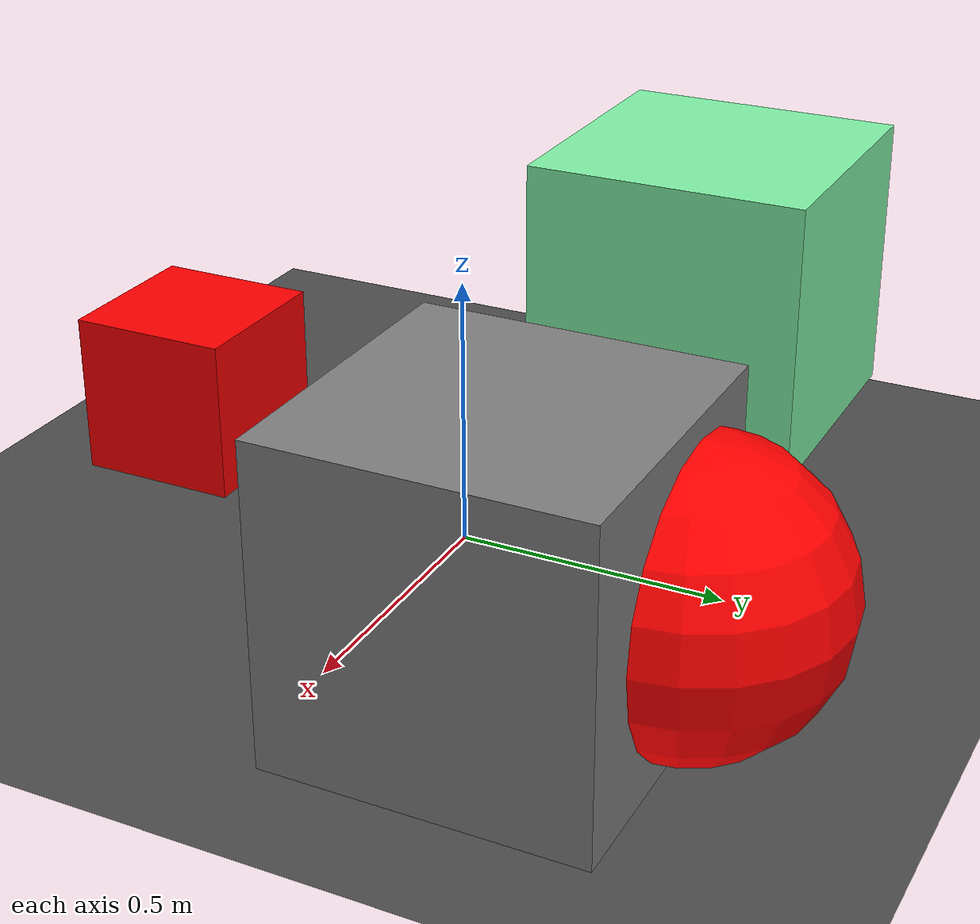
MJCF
<mujoco>
   <asset>
      <texture name="builtin_checker" builtin="checker" type="2d" rgb1="1 1 0" rgb2="0 0 1" width="200" height="200"/>
      <texture name="builtin_gradient" builtin="gradient" rgb1="0 .9 .3" rgb2="1 1 1" width="200" height="200"/>
      <texture name="builtin_flat" builtin="flat" rgb1="1 0 0" rgb2="1 0 0"  width="200" height="200"/>

      <material name="checker_mat" reflectance="0.9" texrepeat="3 3" texture="builtin_checker" texuniform="false" />
      <material name="gradient_mat" reflectance="1" texrepeat="1 1" texture="builtin_gradient" texuniform="true"/>
      <material name="flat_mat" reflectance="1" texrepeat="1 1" texture="builtin_flat" texuniform="true"/>
   </asset>

   <worldbody>
      <light diffuse=".9 .9 .9" pos="0 0 3" dir="0 0 -1"/>
     <geom type="plane" size="1 1 0.1" rgba="0.3 0.3 0.3 1"/>
<body pos="-0.739263343912735 0.17961871052739098 0.27849862728548">
<joint type="free"/>
 <geom type="box" size="0.27849862728548 0.27849862728548 0.27849862728548" material="gradient_mat" />
</body>
<body pos="0.40748039292303917 0.5899231564751702 0.2575378940505948">
<joint type="free"/>
 <geom type="sphere" size="0.2575378940505948 0.2575378940505948 0.2575378940505948" material="flat_mat" />
</body>
<body pos="-0.08919462094431452 -0.631233597152201 0.15402530636095071">
<joint type="free"/>
 <geom type="box" size="0.15402530636095071 0.15402530636095071 0.15402530636095071" material="flat_mat" />
</body>
<body pos="0.4925801464191901 0.3190239780800215 0.2768987226011861">
<joint type="free"/>
 <geom type="box" size="0.2768987226011861 0.2768987226011861 0.2768987226011861" material="checker_mat" />
</body><camera euler="60 0 180" fovy="60" name="camera_a" pos="0 -1.5 1"></camera>   </worldbody>
</mujoco>
